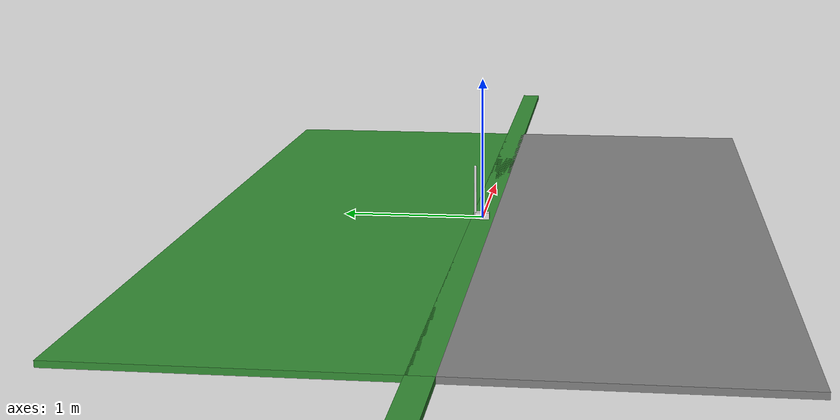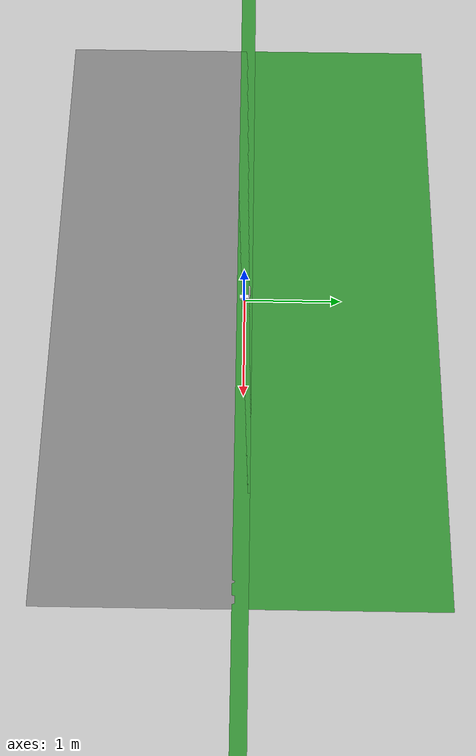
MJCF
<mujoco model="golf_world">
  <compiler angle="degree"/>
  <option timestep="0.002" gravity="0 0 -9.81" integrator="RK4"/>

  <!-- Defaults: enable 6D friction and make contacts crisp -->
  <default>
    <geom condim="6" solref="0.002 1" solimp="0.95 0.99 0.001" friction="0.849072 0.0001 0.0011022"/>
  </default>

  <asset>
    <!-- Materials -->
    <material name="green_mat"     rgba="0.2 0.55 0.2 1"/>
    <material name="green_mat_out" rgba="0.5 0.5 0.5 1"/>
    <material name="cup_mat"       rgba="0.3 0.3 0.3 1"/>
    <texture  name ="checks" type="2d" builtin="checker" width="512" height="512"
              rgb1="1 1 1" rgb2="0 0 0" mark="cross" markrgb="1 0 0"/>
    <material name="ball_mat"  texture="checks" rgba="1 1 1 1"/>
    <material name="club_mat"  rgba="0.9 0.9 0.9 1"/>
  </asset>

  <!-- Contacts -->
  <contact>
    <pair geom1="ball_geom" geom2="club_head" solref="0.01 0.52" solimp="0.707309 1.02488 0.001"/>
  </contact>

  <worldbody>
    <!-- ==== GROUND: 6x4 m area, 0.04 m thick, with a 0.106 m opening at (2, 0) ==== -->
    <!-- Top slab (y in [ +0.053, +2 ]) -->
    <geom name="green_top" type="box"
          pos="0 1.0265 -0.02" size="3.0 0.9735 0.02"
          material="green_mat"/>

    <!-- Bottom slab (y in [ -2, -0.053 ]) -->
    <geom name="green_bottom" type="box"
          pos="0 -1.0265 -0.02" size="3.0 0.9735 0.02"
          material="green_mat_out"/>

    <!-- Left slab (x in [ -3, 1.947 ]) -->
    <geom name="green_left" type="box"
          pos="-0.5265 0 -0.02" size="2.4735 0.08 0.02"
          material="green_mat"/>

    <!-- Right slab (x in [ 2.053, 3 ]) -->
    <geom name="green_right" type="box"
          pos="2.5265 0 -0.02" size="50 0.08 0.02"
          material="green_mat"/>

    <!-- ==== BALL ==== -->
    <camera name="overview" pos="2.0 -3.0 1.5" quat="0.7 0.0 0.7 0.0" fovy="45"/>
    <body name="ball" pos="0 0 0.02135">
      <freejoint name="ball_free"/>
      <geom name="ball_geom" type="sphere" size="0.02135"
            rgba="0.6 0.2 0.6 1" mass="0.04593" material="ball_mat"
            condim="6"/>
    </body>

    <!-- ==== CLUB ==== -->
    <body name="club_mount" pos="0 0 0">
      <joint name="mount_free" type="free" damping="20"/>
      <geom name="mount_inert" type="sphere" size="0.10" mass="5.0"
            rgba="0 0 0 0" contype="0" conaffinity="0"/>

      <body name="club_offset" pos="-0.03 0.05 0.37865">
        <body name="club_link" pos="0 0 0">
          <joint name="club_hinge" type="hinge" axis="0 1 0" limited="true" range="-60 60" damping="0.1"/>
          <geom name="club_shaft" type="capsule" fromto="0 0 0  0 0 -0.36" size="0.01" mass="1.0" material="club_mat"/>
          <geom name="club_head"  type="box"    pos="0.0 -0.05 -0.36" size="0.02 0.05 0.03" mass="0.5" material="club_mat"/>
        </body>
      </body>
    </body>
  </worldbody>

  <!-- ==== ACTUATOR ==== -->
  <actuator>
    <velocity name="club_motor" joint="club_hinge"
              kv="100" ctrlrange="-20 20" forcerange="-40 40"/>
  </actuator>
</mujoco>
